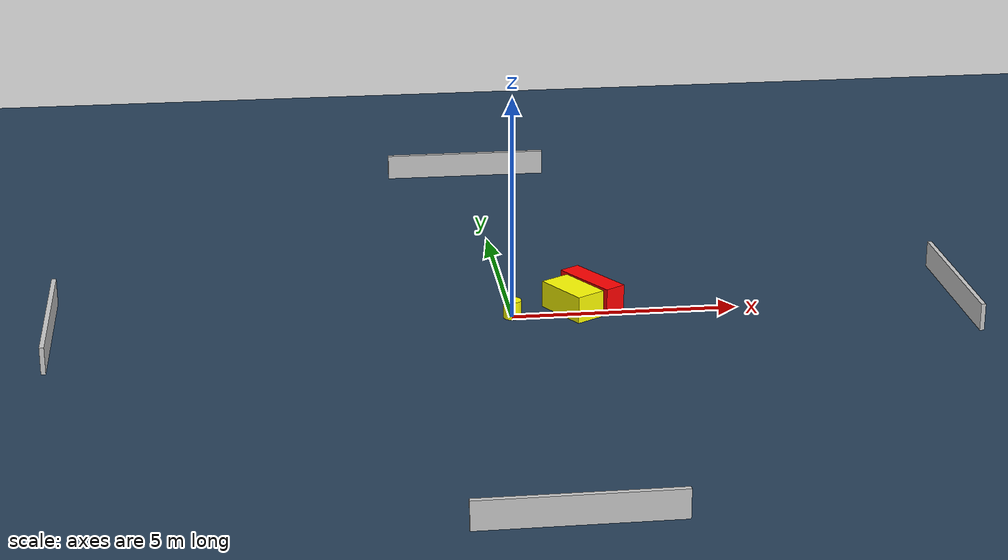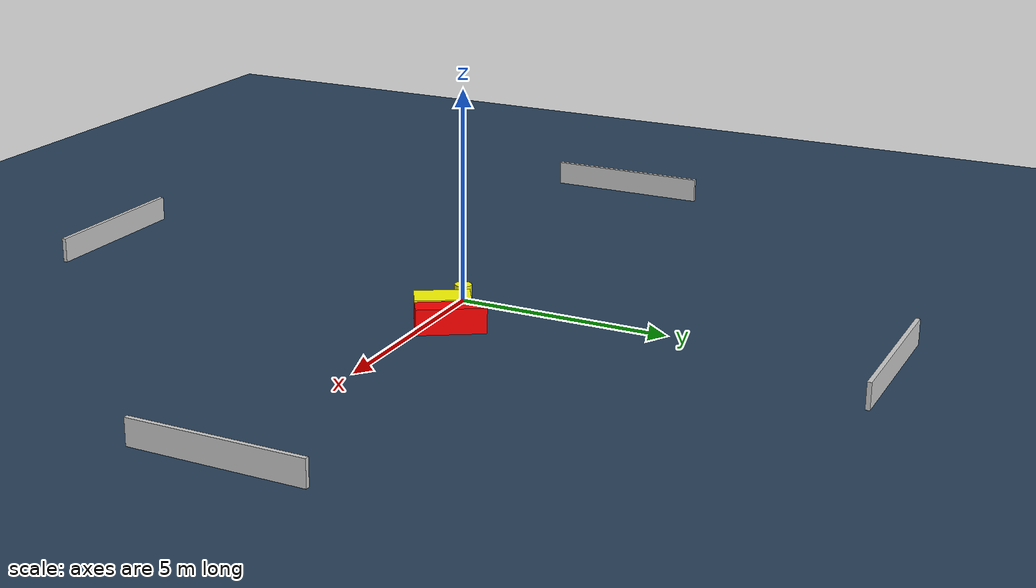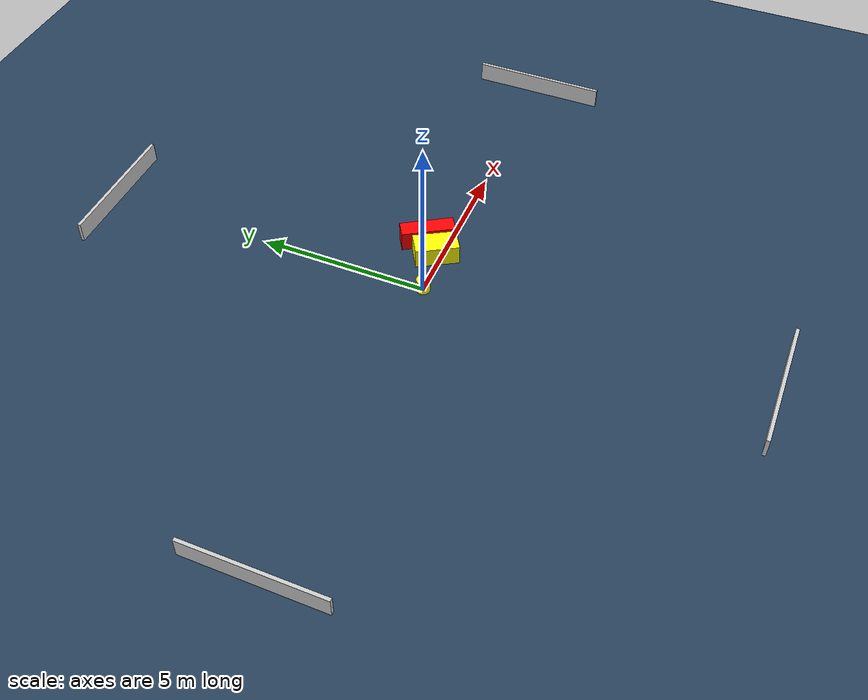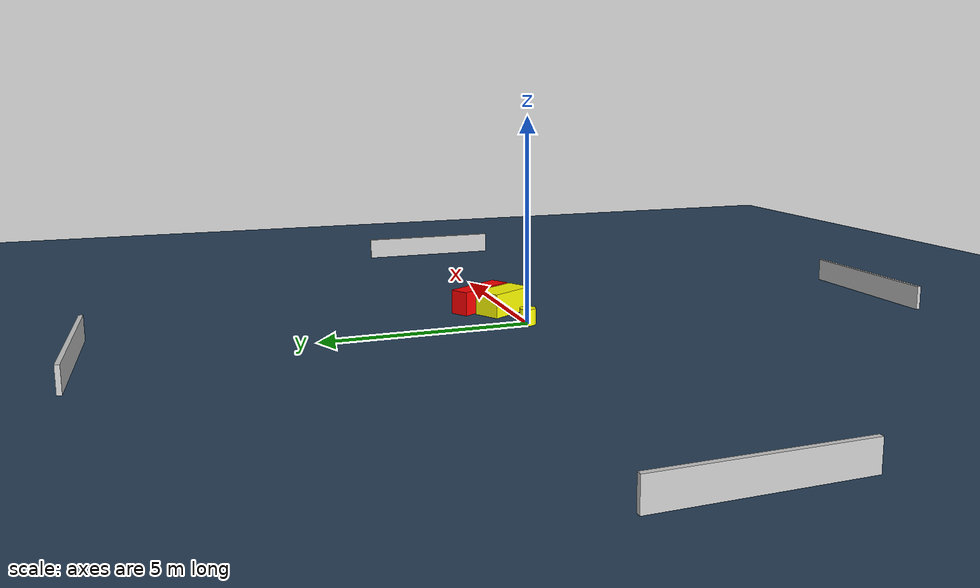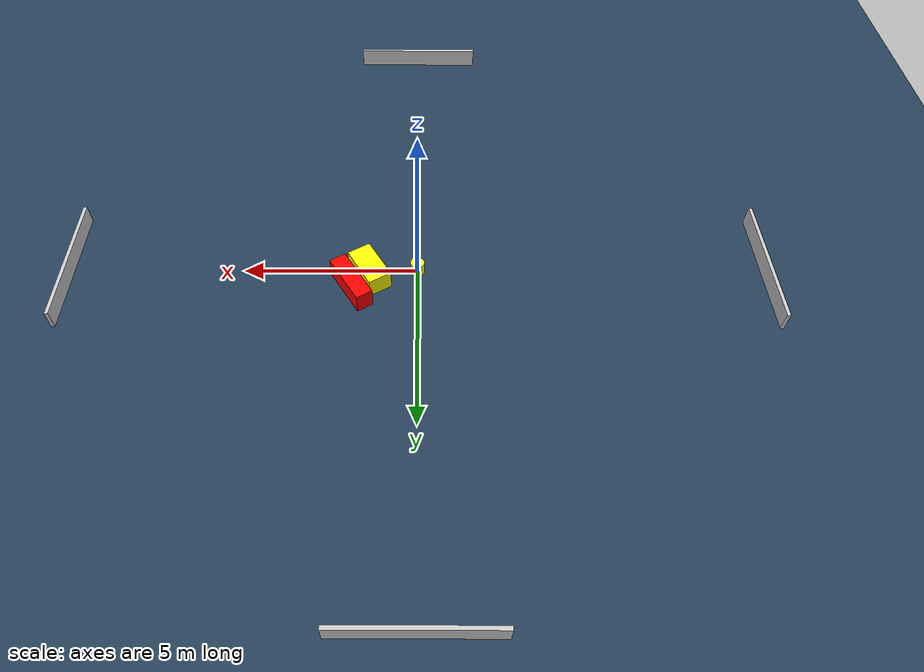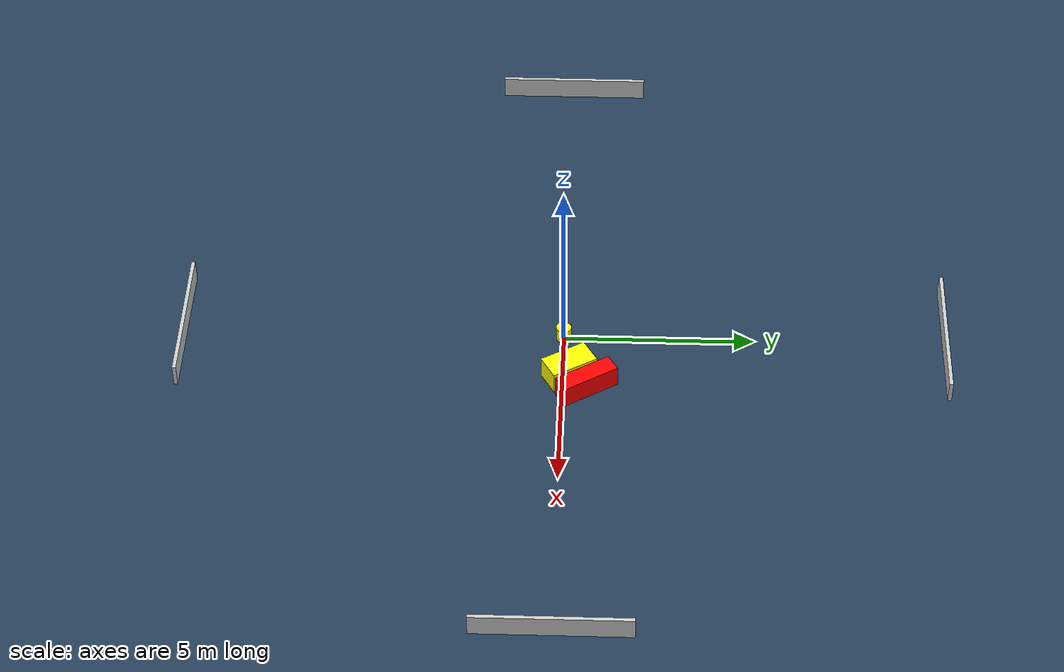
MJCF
<?xml version="1.0" ?>
<mujoco model="generated_environment">
  <option timestep="0.01" integrator="RK4" cone="elliptic"/>
  <default>
    <geom density="1"/>
  </default>
  <asset>
    <texture builtin="gradient" height="3072" name="skybox" rgb1="0.3 0.5 0.7" rgb2="0 0 0" type="skybox" width="512"/>
    <texture builtin="checker" height="300" name="groundplane" rgb1="0.2 0.3 0.4" rgb2="0.1 0.2 0.3" type="2d" width="300"/>
    <material name="groundplane" reflectance="0.2" texrepeat="5 5" texture="groundplane"/>
  </asset>
  <worldbody>
    <light dir="0 0 -1" directional="true" pos="0 0 1.5"/>
    <geom condim="3" friction="0.5 0.005 0.001" material="groundplane" name="floor" pos="0 0 0" size="0 0 0.05" type="plane"/>
    <body name="walls">
      <geom name="wall_1" condim="4" pos="-10.0 0.0 0.3" rgba="0.800000011920929 0.800000011920929 0.800000011920929 1.0" size="0.05 2.0 0.3" type="box"/>
      <geom name="wall_2" condim="4" pos="10.0 0.0 0.3" rgba="0.800000011920929 0.800000011920929 0.800000011920929 1.0" size="0.05 2.0 0.3" type="box"/>
      <geom name="wall_3" condim="4" pos="0.0 -10.0 0.3" rgba="0.800000011920929 0.800000011920929 0.800000011920929 1.0" size="2.0 0.05 0.3" type="box"/>
      <geom name="wall_4" condim="4" pos="0.0 10.0 0.3" rgba="0.800000011920929 0.800000011920929 0.800000011920929 1.0" size="2.0 0.05 0.3" type="box"/>
    </body>
    <body name="robot">
      <joint name="joint_x" type="slide" pos="0 0 0" axis="1 0 0"/>
      <joint name="joint_y" type="slide" pos="0 0 0" axis="0 1 0"/>
      <geom name="robot" type="cylinder" pos="0.0 0.0 0.2" size="0.2 0.2 0.0" mass="5.0" friction="1.0 0.005 0.0001" condim="4" rgba="1.0 1.0 0.0 1.0"/>
    </body>
    <body name="obstacle_1_movable">
      <geom name="obstacle_1_movable" condim="4" pos="1.3672053683054113 0.17439399006638506 0.3" euler="0 0 300.55845680409624" friction="0.0 0.005 0.001" rgba="1.0 1.0 0.0 1.0" size="0.6389562033060328 0.35025700711648355 0.3" type="box" mass="0.1"/>
      <joint type="free"/>
    </body>
    <body name="obstacle_2_static">
      <geom name="obstacle_2_static" condim="4" pos="1.8705750205076255 0.6439810018080468 0.3" euler="0 0 31.708792646817233" friction="0.0 0.005 0.001" rgba="1.0 0.0 0.0 1.0" size="0.24763275500399304 0.789379626507325 0.3" type="box"/>
    </body>
  </worldbody>
  <actuator>
    <motor name="actuator_x" joint="joint_x" gear="1" ctrlrange="-1 1"/>
    <motor name="actuator_y" joint="joint_y" gear="1" ctrlrange="-1 1"/>
  </actuator>
</mujoco>
